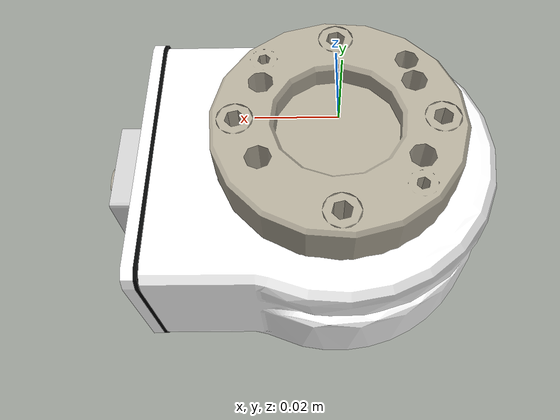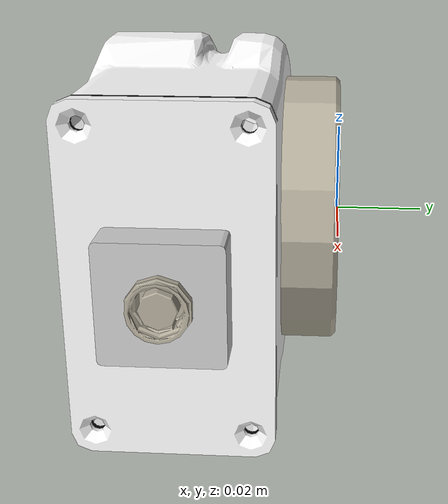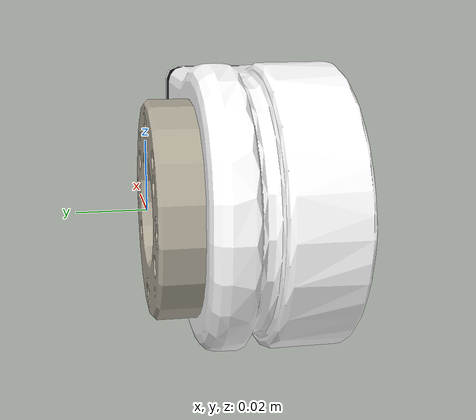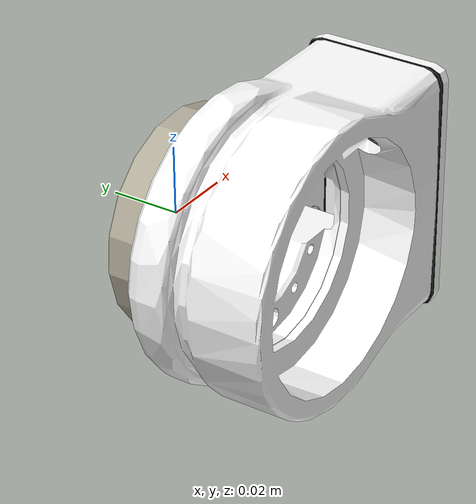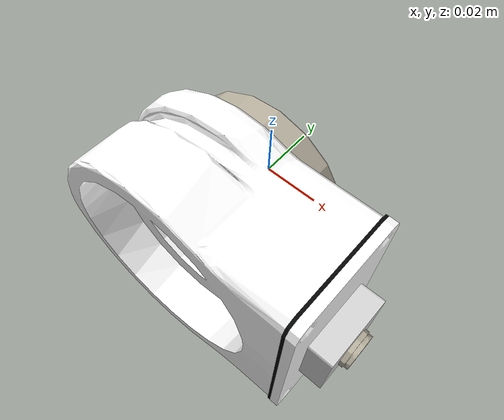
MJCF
<mujoco model="l6">
  <default>
    <default class="visual">
      <geom group="2" type="mesh" contype="0" conaffinity="0"/>
    </default>
    <default class="collision">
      <geom group="3" type="mesh"/>
    </default>
  </default>
  <asset>
    <material name="DEFAULT_MTL.002" specular="0.0" shininess="0.25" rgba="0.800000 0.800000 0.800000 1.000000"/>
    <material name="MTL0.016" specular="0.0" shininess="0.25" rgba="1.000000 1.000000 1.000000 1.000000"/>
    <material name="MTL1.007" specular="0.0" shininess="0.25" rgba="0.098000 0.098000 0.098000 1.000000"/>
    <material name="MTL10" specular="0.0" shininess="0.25" rgba="0.843000 0.816000 0.753000 1.000000"/>
    <material name="MTL11" specular="0.0" shininess="0.25" rgba="0.251000 0.251000 0.251000 1.000000"/>
    <material name="MTL12" specular="0.0" shininess="0.25" rgba="0.827000 0.329000 0.071000 1.000000"/>
    <material name="MTL13" specular="0.0" shininess="0.25" rgba="0.017000 0.018000 0.019000 1.000000"/>
    <material name="MTL2.003" specular="0.0" shininess="0.25" rgba="0.784000 0.686000 0.510000 1.000000"/>
    <material name="MTL3" specular="0.0" shininess="0.25" rgba="0.691000 0.664000 0.598000 1.000000"/>
    <material name="MTL4" specular="0.0" shininess="0.25" rgba="0.060000 0.400000 0.060000 1.000000"/>
    <material name="MTL5" specular="0.0" shininess="0.25" rgba="0.157000 0.157000 0.157000 1.000000"/>
    <material name="MTL6" specular="0.0" shininess="0.25" rgba="0.725000 0.725000 0.725000 1.000000"/>
    <material name="MTL7" specular="0.0" shininess="0.25" rgba="0.459000 0.345000 0.176000 1.000000"/>
    <material name="MTL8" specular="0.0" shininess="0.25" rgba="0.502000 0.502000 0.502000 1.000000"/>
    <material name="MTL9" specular="0.0" shininess="0.25" rgba="1.000000 1.000000 0.000000 1.000000"/>
    <mesh file="l6_0.obj"/>
    <mesh file="l6_1.obj"/>
    <mesh file="l6_2.obj"/>
    <mesh file="l6_3.obj"/>
    <mesh file="l6_4.obj"/>
    <mesh file="l6_5.obj"/>
    <mesh file="l6_6.obj"/>
    <mesh file="l6_7.obj"/>
    <mesh file="l6_8.obj"/>
    <mesh file="l6_9.obj"/>
    <mesh file="l6_10.obj"/>
    <mesh file="l6_11.obj"/>
    <mesh file="l6_12.obj"/>
    <mesh file="l6_13.obj"/>
    <mesh file="l6_14.obj"/>
  </asset>
  <worldbody>
    <body name="l6">
      <geom mesh="l6_0" material="MTL13" class="visual"/>
      <geom mesh="l6_1" material="MTL12" class="visual"/>
      <geom mesh="l6_2" material="MTL11" class="visual"/>
      <geom mesh="l6_3" material="MTL10" class="visual"/>
      <geom mesh="l6_4" material="MTL9" class="visual"/>
      <geom mesh="l6_5" material="MTL8" class="visual"/>
      <geom mesh="l6_6" material="MTL7" class="visual"/>
      <geom mesh="l6_7" material="MTL6" class="visual"/>
      <geom mesh="l6_8" material="MTL5" class="visual"/>
      <geom mesh="l6_9" material="MTL4" class="visual"/>
      <geom mesh="l6_10" material="MTL3" class="visual"/>
      <geom mesh="l6_11" material="MTL2.003" class="visual"/>
      <geom mesh="l6_12" material="MTL1.007" class="visual"/>
      <geom mesh="l6_13" material="DEFAULT_MTL.002" class="visual"/>
      <geom mesh="l6_14" material="MTL0.016" class="visual"/>
      <geom mesh="l6_0" class="collision"/>
      <geom mesh="l6_1" class="collision"/>
      <geom mesh="l6_2" class="collision"/>
      <geom mesh="l6_3" class="collision"/>
      <geom mesh="l6_4" class="collision"/>
      <geom mesh="l6_5" class="collision"/>
      <geom mesh="l6_6" class="collision"/>
      <geom mesh="l6_7" class="collision"/>
      <geom mesh="l6_8" class="collision"/>
      <geom mesh="l6_9" class="collision"/>
      <geom mesh="l6_10" class="collision"/>
      <geom mesh="l6_11" class="collision"/>
      <geom mesh="l6_12" class="collision"/>
      <geom mesh="l6_13" class="collision"/>
      <geom mesh="l6_14" class="collision"/>
    </body>
  </worldbody>
</mujoco>
